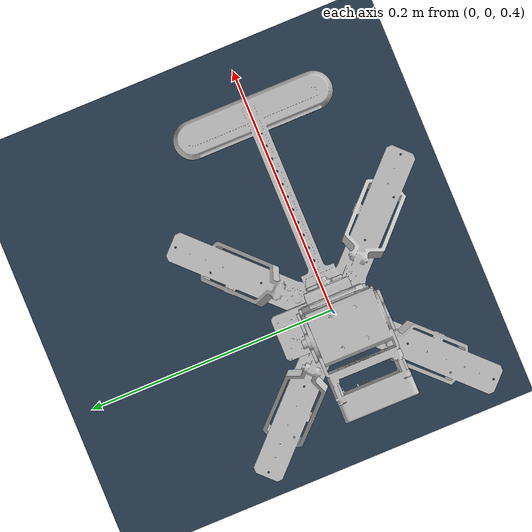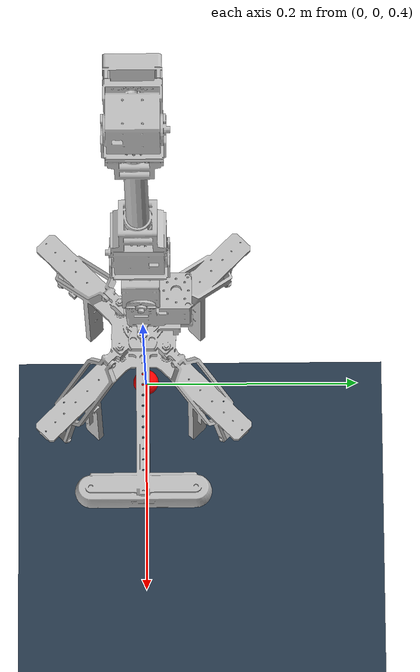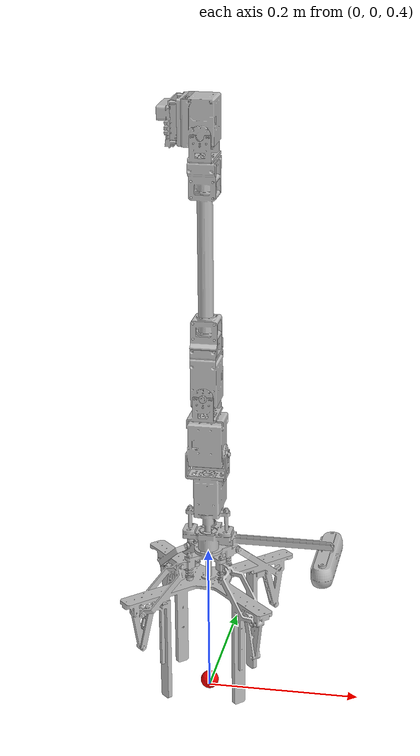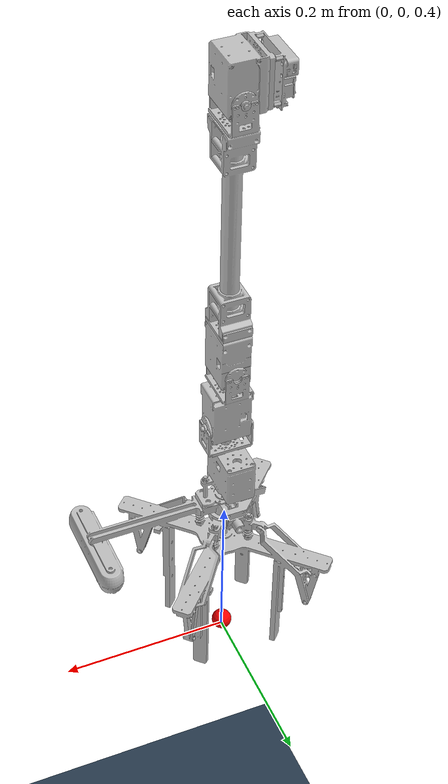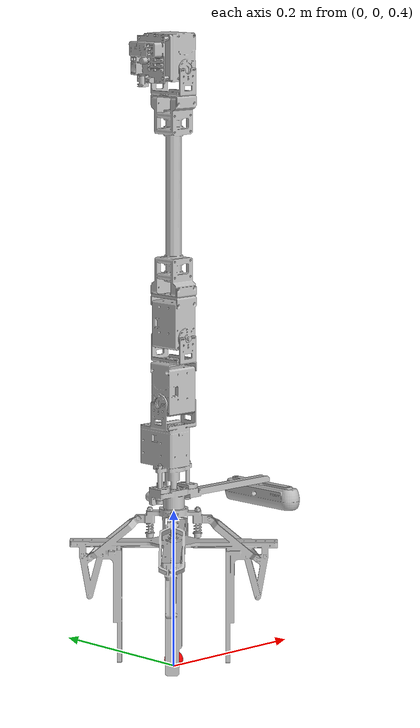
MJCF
<mujoco model="Forest_Cone_Harvesting_Robot_scene">
  <compiler angle="radian" meshdir="meshes" autolimits="true"/>
  <option integrator="implicitfast"/>
  <statistic center="0 0 1.0" extent="1.0"/>

  <visual>
    <headlight diffuse="0.6 0.6 0.6" ambient="0.3 0.3 0.3" specular="0 0 0"/>
    <rgba haze="0.15 0.25 0.35 1"/>
    <global azimuth="130" elevation="-20"/>
  </visual>

  <default>
    <joint damping="0.3" armature="0.01"/>
    <default class="visual">
      <geom type="mesh" group="2" contype="0" conaffinity="0" rgba="0.75294 0.75294 0.75294 1"/>
    </default>
    <default class="collision">
      <geom group="3"/>
    </default>
  </default>

  <asset>
    <texture type="skybox" builtin="gradient" rgb1="0.3 0.5 0.7" rgb2="0 0 0" width="512" height="3072"/>
    <texture type="2d" name="groundplane" builtin="checker" mark="edge" rgb1="0.2 0.3 0.4" rgb2="0.1 0.15 0.2" markrgb="0.8 0.8 0.8" width="300" height="300"/>
    <material name="groundplane" texture="groundplane" texuniform="true" texrepeat="5 5" reflectance="0.2"/>
    <mesh name="base_link" file="base_link.STL" scale="0.001 0.001 0.001"/>
    <mesh name="link1" file="link1.STL" scale="0.001 0.001 0.001"/>
    <mesh name="link2" file="link2.STL" scale="0.001 0.001 0.001"/>
    <mesh name="link3" file="link3.STL" scale="0.001 0.001 0.001"/>
    <mesh name="link4" file="link4.STL" scale="0.001 0.001 0.001"/>
  </asset>

  <worldbody>
    <light pos="0 0 3.0" dir="0 0 -1" directional="true"/>
    <geom name="floor" type="plane" size="0 0 0.05" material="groundplane"/>
    <!-- URDF "world" = worldbody. 게이트리는 z=1.2 공중에 위치 -->
    <body name="carriage_x" pos="0 0 1.2">
      <joint name="joint_x" type="slide" axis="1 0 0" range="-0.5 0.5"/>
      <inertial pos="0 0 0" mass="0.1" fullinertia="0.0001 0.0001 0.0001 0 0 0"/>
      <body name="carriage_y" pos="0 0 0">
        <joint name="joint_y" type="slide" axis="0 1 0" range="-0.5 0.5"/>
        <inertial pos="0 0 0" mass="0.1" fullinertia="0.0001 0.0001 0.0001 0 0 0"/>
        <body name="base_link" pos="0 0 0" quat="1.794896515e-09 1 0 0">
          <inertial pos="-0.01024 0 0.02917" mass="0.205" fullinertia="0.00027 0.00033 0.00013 0 6e-05 0"/>
          <geom class="visual" mesh="base_link"/>
          <geom class="collision" type="mesh" mesh="base_link"/>
          <body name="link1" pos="0 0 0.04475" quat="0.4999981634 -0.5 -0.5 -0.5000018366">
            <joint name="joint1" type="hinge" axis="0 0 1" range="0 1.5708"/>
            <inertial pos="0.23315 0 0.0003" mass="0.394" fullinertia="0.00011 0.02625 0.02621 0 -4e-05 0"/>
            <geom class="visual" mesh="link1"/>
            <geom class="collision" type="mesh" mesh="link1"/>
            <body name="link2" pos="0.333 0 0">
              <joint name="joint2" type="hinge" axis="0 0 1" range="-1.5708 1.5708"/>
              <inertial pos="0.06362 0.00046 0" mass="0.205" fullinertia="6e-05 0.00095 0.00096 -1e-05 0 0"/>
              <geom class="visual" mesh="link2"/>
              <geom class="collision" type="mesh" mesh="link2"/>
              <body name="link3" pos="0.0835 0 0" quat="0.7071054825 -0.7071080799 0 0">
                <joint name="joint3" type="hinge" axis="0 0 1" range="-1.5708 1.5708"/>
                <inertial pos="0.06268 0.01244 0" mass="0.304" fullinertia="0.00017 0.00142 0.00151 -0.00022 0 0"/>
                <geom class="visual" mesh="link3"/>
                <geom class="collision" type="mesh" mesh="link3"/>
                <body name="link4" pos="0.081 0 0" quat="0.4999981634 -0.5 0.5000018366 -0.5">
                  <joint name="joint4" type="hinge" axis="0 0 1" limited="false"/>
                  <inertial pos="-0.00062 -0.04272 0.11889" mass="0.856" fullinertia="0.02161 0.01623 0.00887 0 3e-05 0.00284"/>
                  <geom class="visual" mesh="link4"/>
                  <geom class="collision" type="mesh" mesh="link4"/>
                  <body name="tcp" pos="0 0 0.25">
                    <site name="tcp" size="0.012" rgba="1 0 0 1"/>
                  </body>
                </body>
              </body>
            </body>
          </body>
        </body>
      </body>
    </body>
  </worldbody>

  <actuator>
    <motor name="act_joint_x" joint="joint_x"/>
    <motor name="act_joint_y" joint="joint_y"/>
    <motor name="act_joint1" joint="joint1"/>
    <motor name="act_joint2" joint="joint2"/>
    <motor name="act_joint3" joint="joint3"/>
    <motor name="act_joint4" joint="joint4"/>
  </actuator>

  <keyframe>
    <key name="home" qpos="0 0 0 0 0 0" ctrl="0 0 0 0 0 0"/>
  </keyframe>
</mujoco>
